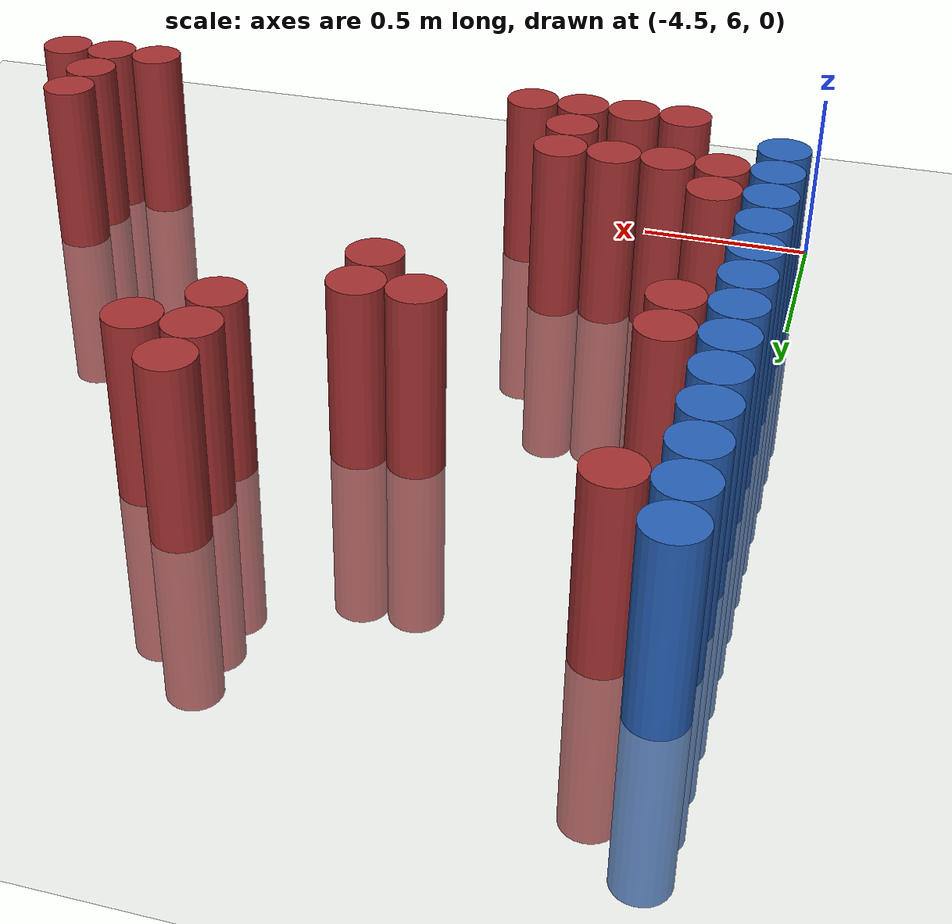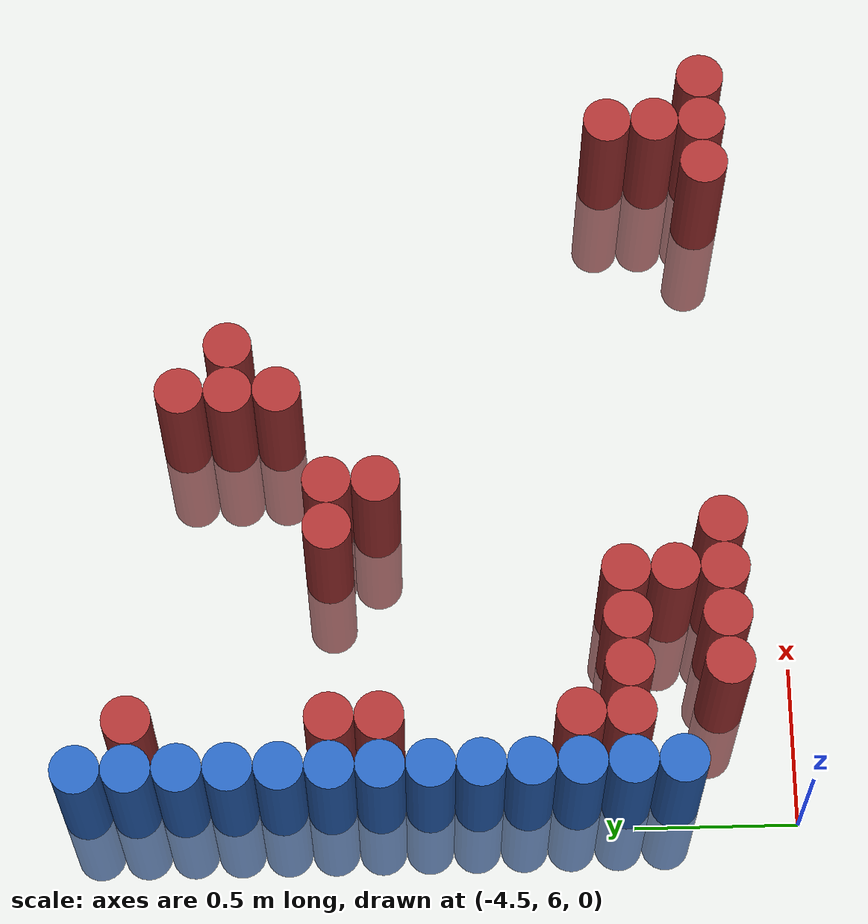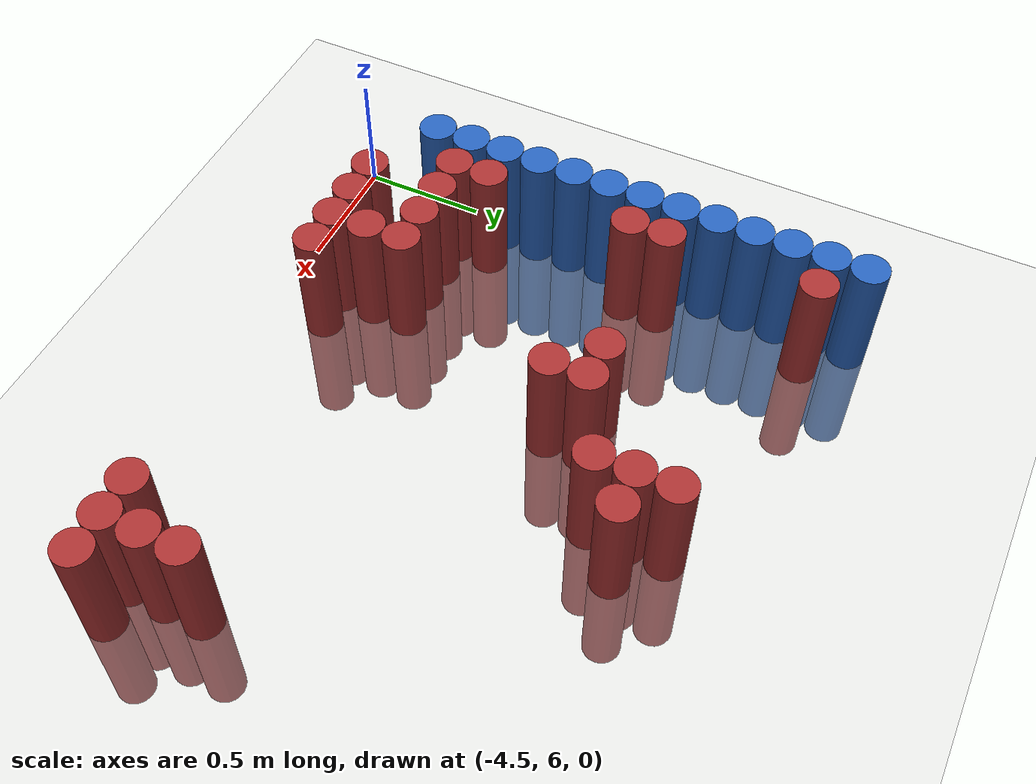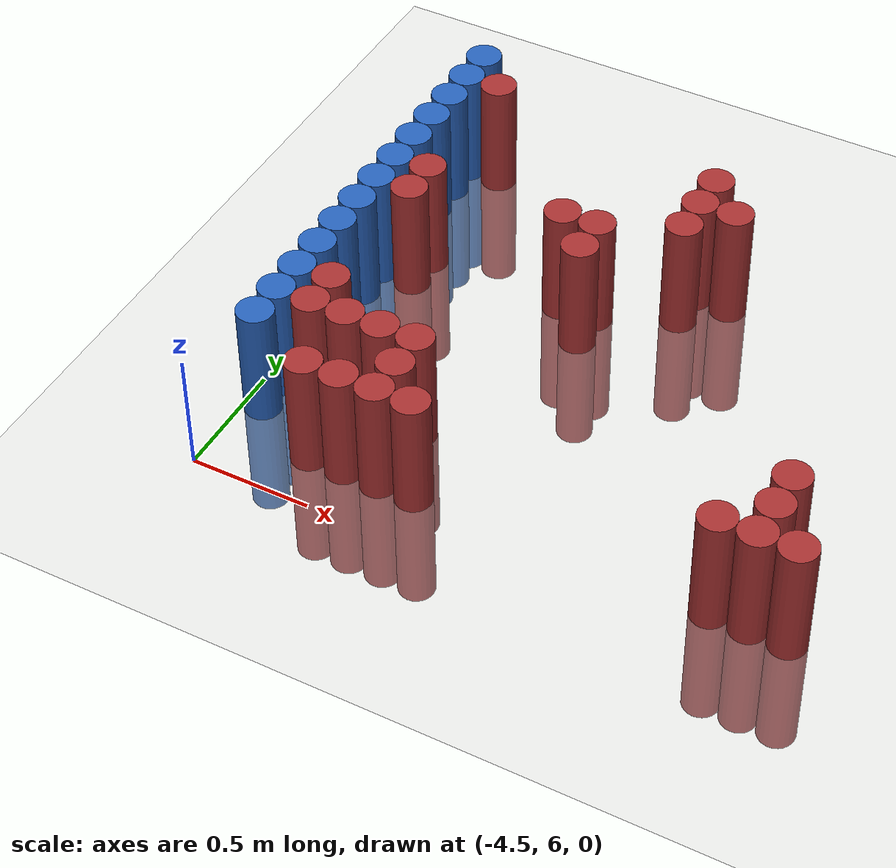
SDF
<sdf version="1.6">
 <world name="default">
  <model name="ground_plane">
   <static>1</static>
   <link name="link">
    <collision name="collision">
     <geometry><plane><normal>0 0 1</normal><size>100 100</size></plane></geometry>
     <surface><friction><ode><mu>100</mu><mu2>50</mu2></ode></friction></surface>
    </collision>
    <visual name="visual">
     <cast_shadows>0</cast_shadows>
     <geometry><plane><normal>0 0 1</normal><size>100 100</size></plane></geometry>
     <material>
      <script><uri>file://media/materials/scripts/gazebo.material</uri><name>Gazebo/Grey</name></script>
     </material>
    </visual>
   </link>
  </model>
  <model name="unit_cylinder_104">
   <static>1</static>
   <pose>-4.425000 6.375000 0.000000 0.000000 0.000000 0.000000</pose>
   <link name="link">
    <inertial>
     <mass>1</mass>
     <inertia><ixx>0.145833</ixx><ixy>0</ixy><ixz>0</ixz><iyy>0.145833</iyy><iyz>0</iyz><izz>0.125</izz></inertia>
    </inertial>
    <collision name="collision">
     <geometry><cylinder><radius>0.075000</radius><length>1</length></cylinder></geometry>
    </collision>
    <visual name="visual">
     <geometry><cylinder><radius>0.075000</radius><length>1</length></cylinder></geometry>
     <material>
      <ambient>0.152000 0.379000 0.720000 1</ambient>
      <diffuse>0.152000 0.379000 0.720000 1</diffuse>
     </material>
     <material>
      <script><name>Gazebo/Grey</name><uri>file://media/materials/scripts/gazebo.material</uri></script>
     </material>
    </visual>
    <sensor name="sensor_contact" type="contact"><contact><collision>collision</collision></contact></sensor>
   </link>
   <plugin filename="gz-sim-touchplugin-system" name="gz::sim::systems::TouchPlugin">
    <target>robot</target>
    <namespace>robot</namespace>
    <time>0.001</time>
    <enabled>true</enabled>
   </plugin>
  </model>
  <model name="unit_cylinder_105">
   <static>1</static>
   <pose>-4.425000 6.525000 0.000000 0.000000 0.000000 0.000000</pose>
   <link name="link">
    <inertial>
     <mass>1</mass>
     <inertia><ixx>0.145833</ixx><ixy>0</ixy><ixz>0</ixz><iyy>0.145833</iyy><iyz>0</iyz><izz>0.125</izz></inertia>
    </inertial>
    <collision name="collision">
     <geometry><cylinder><radius>0.075000</radius><length>1</length></cylinder></geometry>
    </collision>
    <visual name="visual">
     <geometry><cylinder><radius>0.075000</radius><length>1</length></cylinder></geometry>
     <material>
      <ambient>0.152000 0.379000 0.720000 1</ambient>
      <diffuse>0.152000 0.379000 0.720000 1</diffuse>
     </material>
     <material>
      <script><name>Gazebo/Grey</name><uri>file://media/materials/scripts/gazebo.material</uri></script>
     </material>
    </visual>
    <sensor name="sensor_contact" type="contact"><contact><collision>collision</collision></contact></sensor>
   </link>
   <plugin filename="gz-sim-touchplugin-system" name="gz::sim::systems::TouchPlugin">
    <target>robot</target>
    <namespace>robot</namespace>
    <time>0.001</time>
    <enabled>true</enabled>
   </plugin>
  </model>
  <model name="unit_cylinder_106">
   <static>1</static>
   <pose>-4.425000 6.675000 0.000000 0.000000 0.000000 0.000000</pose>
   <link name="link">
    <inertial>
     <mass>1</mass>
     <inertia><ixx>0.145833</ixx><ixy>0</ixy><ixz>0</ixz><iyy>0.145833</iyy><iyz>0</iyz><izz>0.125</izz></inertia>
    </inertial>
    <collision name="collision">
     <geometry><cylinder><radius>0.075000</radius><length>1</length></cylinder></geometry>
    </collision>
    <visual name="visual">
     <geometry><cylinder><radius>0.075000</radius><length>1</length></cylinder></geometry>
     <material>
      <ambient>0.152000 0.379000 0.720000 1</ambient>
      <diffuse>0.152000 0.379000 0.720000 1</diffuse>
     </material>
     <material>
      <script><name>Gazebo/Grey</name><uri>file://media/materials/scripts/gazebo.material</uri></script>
     </material>
    </visual>
    <sensor name="sensor_contact" type="contact"><contact><collision>collision</collision></contact></sensor>
   </link>
   <plugin filename="gz-sim-touchplugin-system" name="gz::sim::systems::TouchPlugin">
    <target>robot</target>
    <namespace>robot</namespace>
    <time>0.001</time>
    <enabled>true</enabled>
   </plugin>
  </model>
  <model name="unit_cylinder_107">
   <static>1</static>
   <pose>-4.425000 6.825000 0.000000 0.000000 0.000000 0.000000</pose>
   <link name="link">
    <inertial>
     <mass>1</mass>
     <inertia><ixx>0.145833</ixx><ixy>0</ixy><ixz>0</ixz><iyy>0.145833</iyy><iyz>0</iyz><izz>0.125</izz></inertia>
    </inertial>
    <collision name="collision">
     <geometry><cylinder><radius>0.075000</radius><length>1</length></cylinder></geometry>
    </collision>
    <visual name="visual">
     <geometry><cylinder><radius>0.075000</radius><length>1</length></cylinder></geometry>
     <material>
      <ambient>0.152000 0.379000 0.720000 1</ambient>
      <diffuse>0.152000 0.379000 0.720000 1</diffuse>
     </material>
     <material>
      <script><name>Gazebo/Grey</name><uri>file://media/materials/scripts/gazebo.material</uri></script>
     </material>
    </visual>
    <sensor name="sensor_contact" type="contact"><contact><collision>collision</collision></contact></sensor>
   </link>
   <plugin filename="gz-sim-touchplugin-system" name="gz::sim::systems::TouchPlugin">
    <target>robot</target>
    <namespace>robot</namespace>
    <time>0.001</time>
    <enabled>true</enabled>
   </plugin>
  </model>
  <model name="unit_cylinder_108">
   <static>1</static>
   <pose>-4.425000 6.975000 0.000000 0.000000 0.000000 0.000000</pose>
   <link name="link">
    <inertial>
     <mass>1</mass>
     <inertia><ixx>0.145833</ixx><ixy>0</ixy><ixz>0</ixz><iyy>0.145833</iyy><iyz>0</iyz><izz>0.125</izz></inertia>
    </inertial>
    <collision name="collision">
     <geometry><cylinder><radius>0.075000</radius><length>1</length></cylinder></geometry>
    </collision>
    <visual name="visual">
     <geometry><cylinder><radius>0.075000</radius><length>1</length></cylinder></geometry>
     <material>
      <ambient>0.152000 0.379000 0.720000 1</ambient>
      <diffuse>0.152000 0.379000 0.720000 1</diffuse>
     </material>
     <material>
      <script><name>Gazebo/Grey</name><uri>file://media/materials/scripts/gazebo.material</uri></script>
     </material>
    </visual>
    <sensor name="sensor_contact" type="contact"><contact><collision>collision</collision></contact></sensor>
   </link>
   <plugin filename="gz-sim-touchplugin-system" name="gz::sim::systems::TouchPlugin">
    <target>robot</target>
    <namespace>robot</namespace>
    <time>0.001</time>
    <enabled>true</enabled>
   </plugin>
  </model>
  <model name="unit_cylinder_109">
   <static>1</static>
   <pose>-4.425000 7.125000 0.000000 0.000000 0.000000 0.000000</pose>
   <link name="link">
    <inertial>
     <mass>1</mass>
     <inertia><ixx>0.145833</ixx><ixy>0</ixy><ixz>0</ixz><iyy>0.145833</iyy><iyz>0</iyz><izz>0.125</izz></inertia>
    </inertial>
    <collision name="collision">
     <geometry><cylinder><radius>0.075000</radius><length>1</length></cylinder></geometry>
    </collision>
    <visual name="visual">
     <geometry><cylinder><radius>0.075000</radius><length>1</length></cylinder></geometry>
     <material>
      <ambient>0.152000 0.379000 0.720000 1</ambient>
      <diffuse>0.152000 0.379000 0.720000 1</diffuse>
     </material>
     <material>
      <script><name>Gazebo/Grey</name><uri>file://media/materials/scripts/gazebo.material</uri></script>
     </material>
    </visual>
    <sensor name="sensor_contact" type="contact"><contact><collision>collision</collision></contact></sensor>
   </link>
   <plugin filename="gz-sim-touchplugin-system" name="gz::sim::systems::TouchPlugin">
    <target>robot</target>
    <namespace>robot</namespace>
    <time>0.001</time>
    <enabled>true</enabled>
   </plugin>
  </model>
  <model name="unit_cylinder_110">
   <static>1</static>
   <pose>-4.425000 7.275000 0.000000 0.000000 0.000000 0.000000</pose>
   <link name="link">
    <inertial>
     <mass>1</mass>
     <inertia><ixx>0.145833</ixx><ixy>0</ixy><ixz>0</ixz><iyy>0.145833</iyy><iyz>0</iyz><izz>0.125</izz></inertia>
    </inertial>
    <collision name="collision">
     <geometry><cylinder><radius>0.075000</radius><length>1</length></cylinder></geometry>
    </collision>
    <visual name="visual">
     <geometry><cylinder><radius>0.075000</radius><length>1</length></cylinder></geometry>
     <material>
      <ambient>0.152000 0.379000 0.720000 1</ambient>
      <diffuse>0.152000 0.379000 0.720000 1</diffuse>
     </material>
     <material>
      <script><name>Gazebo/Grey</name><uri>file://media/materials/scripts/gazebo.material</uri></script>
     </material>
    </visual>
    <sensor name="sensor_contact" type="contact"><contact><collision>collision</collision></contact></sensor>
   </link>
   <plugin filename="gz-sim-touchplugin-system" name="gz::sim::systems::TouchPlugin">
    <target>robot</target>
    <namespace>robot</namespace>
    <time>0.001</time>
    <enabled>true</enabled>
   </plugin>
  </model>
  <model name="unit_cylinder_111">
   <static>1</static>
   <pose>-4.425000 7.425000 0.000000 0.000000 0.000000 0.000000</pose>
   <link name="link">
    <inertial>
     <mass>1</mass>
     <inertia><ixx>0.145833</ixx><ixy>0</ixy><ixz>0</ixz><iyy>0.145833</iyy><iyz>0</iyz><izz>0.125</izz></inertia>
    </inertial>
    <collision name="collision">
     <geometry><cylinder><radius>0.075000</radius><length>1</length></cylinder></geometry>
    </collision>
    <visual name="visual">
     <geometry><cylinder><radius>0.075000</radius><length>1</length></cylinder></geometry>
     <material>
      <ambient>0.152000 0.379000 0.720000 1</ambient>
      <diffuse>0.152000 0.379000 0.720000 1</diffuse>
     </material>
     <material>
      <script><name>Gazebo/Grey</name><uri>file://media/materials/scripts/gazebo.material</uri></script>
     </material>
    </visual>
    <sensor name="sensor_contact" type="contact"><contact><collision>collision</collision></contact></sensor>
   </link>
   <plugin filename="gz-sim-touchplugin-system" name="gz::sim::systems::TouchPlugin">
    <target>robot</target>
    <namespace>robot</namespace>
    <time>0.001</time>
    <enabled>true</enabled>
   </plugin>
  </model>
  <model name="unit_cylinder_112">
   <static>1</static>
   <pose>-4.425000 7.575000 0.000000 0.000000 0.000000 0.000000</pose>
   <link name="link">
    <inertial>
     <mass>1</mass>
     <inertia><ixx>0.145833</ixx><ixy>0</ixy><ixz>0</ixz><iyy>0.145833</iyy><iyz>0</iyz><izz>0.125</izz></inertia>
    </inertial>
    <collision name="collision">
     <geometry><cylinder><radius>0.075000</radius><length>1</length></cylinder></geometry>
    </collision>
    <visual name="visual">
     <geometry><cylinder><radius>0.075000</radius><length>1</length></cylinder></geometry>
     <material>
      <ambient>0.152000 0.379000 0.720000 1</ambient>
      <diffuse>0.152000 0.379000 0.720000 1</diffuse>
     </material>
     <material>
      <script><name>Gazebo/Grey</name><uri>file://media/materials/scripts/gazebo.material</uri></script>
     </material>
    </visual>
    <sensor name="sensor_contact" type="contact"><contact><collision>collision</collision></contact></sensor>
   </link>
   <plugin filename="gz-sim-touchplugin-system" name="gz::sim::systems::TouchPlugin">
    <target>robot</target>
    <namespace>robot</namespace>
    <time>0.001</time>
    <enabled>true</enabled>
   </plugin>
  </model>
  <model name="unit_cylinder_113">
   <static>1</static>
   <pose>-4.425000 7.725000 0.000000 0.000000 0.000000 0.000000</pose>
   <link name="link">
    <inertial>
     <mass>1</mass>
     <inertia><ixx>0.145833</ixx><ixy>0</ixy><ixz>0</ixz><iyy>0.145833</iyy><iyz>0</iyz><izz>0.125</izz></inertia>
    </inertial>
    <collision name="collision">
     <geometry><cylinder><radius>0.075000</radius><length>1</length></cylinder></geometry>
    </collision>
    <visual name="visual">
     <geometry><cylinder><radius>0.075000</radius><length>1</length></cylinder></geometry>
     <material>
      <ambient>0.152000 0.379000 0.720000 1</ambient>
      <diffuse>0.152000 0.379000 0.720000 1</diffuse>
     </material>
     <material>
      <script><name>Gazebo/Grey</name><uri>file://media/materials/scripts/gazebo.material</uri></script>
     </material>
    </visual>
    <sensor name="sensor_contact" type="contact"><contact><collision>collision</collision></contact></sensor>
   </link>
   <plugin filename="gz-sim-touchplugin-system" name="gz::sim::systems::TouchPlugin">
    <target>robot</target>
    <namespace>robot</namespace>
    <time>0.001</time>
    <enabled>true</enabled>
   </plugin>
  </model>
  <model name="unit_cylinder_114">
   <static>1</static>
   <pose>-4.425000 7.875000 0.000000 0.000000 0.000000 0.000000</pose>
   <link name="link">
    <inertial>
     <mass>1</mass>
     <inertia><ixx>0.145833</ixx><ixy>0</ixy><ixz>0</ixz><iyy>0.145833</iyy><iyz>0</iyz><izz>0.125</izz></inertia>
    </inertial>
    <collision name="collision">
     <geometry><cylinder><radius>0.075000</radius><length>1</length></cylinder></geometry>
    </collision>
    <visual name="visual">
     <geometry><cylinder><radius>0.075000</radius><length>1</length></cylinder></geometry>
     <material>
      <ambient>0.152000 0.379000 0.720000 1</ambient>
      <diffuse>0.152000 0.379000 0.720000 1</diffuse>
     </material>
     <material>
      <script><name>Gazebo/Grey</name><uri>file://media/materials/scripts/gazebo.material</uri></script>
     </material>
    </visual>
    <sensor name="sensor_contact" type="contact"><contact><collision>collision</collision></contact></sensor>
   </link>
   <plugin filename="gz-sim-touchplugin-system" name="gz::sim::systems::TouchPlugin">
    <target>robot</target>
    <namespace>robot</namespace>
    <time>0.001</time>
    <enabled>true</enabled>
   </plugin>
  </model>
  <model name="unit_cylinder_115">
   <static>1</static>
   <pose>-4.425000 8.025000 0.000000 0.000000 0.000000 0.000000</pose>
   <link name="link">
    <inertial>
     <mass>1</mass>
     <inertia><ixx>0.145833</ixx><ixy>0</ixy><ixz>0</ixz><iyy>0.145833</iyy><iyz>0</iyz><izz>0.125</izz></inertia>
    </inertial>
    <collision name="collision">
     <geometry><cylinder><radius>0.075000</radius><length>1</length></cylinder></geometry>
    </collision>
    <visual name="visual">
     <geometry><cylinder><radius>0.075000</radius><length>1</length></cylinder></geometry>
     <material>
      <ambient>0.152000 0.379000 0.720000 1</ambient>
      <diffuse>0.152000 0.379000 0.720000 1</diffuse>
     </material>
     <material>
      <script><name>Gazebo/Grey</name><uri>file://media/materials/scripts/gazebo.material</uri></script>
     </material>
    </visual>
    <sensor name="sensor_contact" type="contact"><contact><collision>collision</collision></contact></sensor>
   </link>
   <plugin filename="gz-sim-touchplugin-system" name="gz::sim::systems::TouchPlugin">
    <target>robot</target>
    <namespace>robot</namespace>
    <time>0.001</time>
    <enabled>true</enabled>
   </plugin>
  </model>
  <model name="unit_cylinder_116">
   <static>1</static>
   <pose>-4.425000 8.175000 0.000000 0.000000 0.000000 0.000000</pose>
   <link name="link">
    <inertial>
     <mass>1</mass>
     <inertia><ixx>0.145833</ixx><ixy>0</ixy><ixz>0</ixz><iyy>0.145833</iyy><iyz>0</iyz><izz>0.125</izz></inertia>
    </inertial>
    <collision name="collision">
     <geometry><cylinder><radius>0.075000</radius><length>1</length></cylinder></geometry>
    </collision>
    <visual name="visual">
     <geometry><cylinder><radius>0.075000</radius><length>1</length></cylinder></geometry>
     <material>
      <ambient>0.152000 0.379000 0.720000 1</ambient>
      <diffuse>0.152000 0.379000 0.720000 1</diffuse>
     </material>
     <material>
      <script><name>Gazebo/Grey</name><uri>file://media/materials/scripts/gazebo.material</uri></script>
     </material>
    </visual>
    <sensor name="sensor_contact" type="contact"><contact><collision>collision</collision></contact></sensor>
   </link>
   <plugin filename="gz-sim-touchplugin-system" name="gz::sim::systems::TouchPlugin">
    <target>robot</target>
    <namespace>robot</namespace>
    <time>0.001</time>
    <enabled>true</enabled>
   </plugin>
  </model>
  <model name="unit_cylinder_131">
   <static>1</static>
   <pose>-4.275000 6.525000 0.000000 0.000000 0.000000 0.000000</pose>
   <link name="link">
    <inertial>
     <mass>1</mass>
     <inertia><ixx>0.145833</ixx><ixy>0</ixy><ixz>0</ixz><iyy>0.145833</iyy><iyz>0</iyz><izz>0.125</izz></inertia>
    </inertial>
    <collision name="collision">
     <geometry><cylinder><radius>0.075000</radius><length>1</length></cylinder></geometry>
    </collision>
    <visual name="visual">
     <geometry><cylinder><radius>0.075000</radius><length>1</length></cylinder></geometry>
     <material>
      <ambient>0.648000 0.192000 0.192000 1</ambient>
      <diffuse>0.648000 0.192000 0.192000 1</diffuse>
     </material>
     <material>
      <script><name>Gazebo/Grey</name><uri>file://media/materials/scripts/gazebo.material</uri></script>
     </material>
    </visual>
    <sensor name="sensor_contact" type="contact"><contact><collision>collision</collision></contact></sensor>
   </link>
   <plugin filename="gz-sim-touchplugin-system" name="gz::sim::systems::TouchPlugin">
    <target>robot</target>
    <namespace>robot</namespace>
    <time>0.001</time>
    <enabled>true</enabled>
   </plugin>
  </model>
  <model name="unit_cylinder_132">
   <static>1</static>
   <pose>-4.275000 6.675000 0.000000 0.000000 0.000000 0.000000</pose>
   <link name="link">
    <inertial>
     <mass>1</mass>
     <inertia><ixx>0.145833</ixx><ixy>0</ixy><ixz>0</ixz><iyy>0.145833</iyy><iyz>0</iyz><izz>0.125</izz></inertia>
    </inertial>
    <collision name="collision">
     <geometry><cylinder><radius>0.075000</radius><length>1</length></cylinder></geometry>
    </collision>
    <visual name="visual">
     <geometry><cylinder><radius>0.075000</radius><length>1</length></cylinder></geometry>
     <material>
      <ambient>0.648000 0.192000 0.192000 1</ambient>
      <diffuse>0.648000 0.192000 0.192000 1</diffuse>
     </material>
     <material>
      <script><name>Gazebo/Grey</name><uri>file://media/materials/scripts/gazebo.material</uri></script>
     </material>
    </visual>
    <sensor name="sensor_contact" type="contact"><contact><collision>collision</collision></contact></sensor>
   </link>
   <plugin filename="gz-sim-touchplugin-system" name="gz::sim::systems::TouchPlugin">
    <target>robot</target>
    <namespace>robot</namespace>
    <time>0.001</time>
    <enabled>true</enabled>
   </plugin>
  </model>
  <model name="unit_cylinder_133">
   <static>1</static>
   <pose>-4.275000 7.275000 0.000000 0.000000 0.000000 0.000000</pose>
   <link name="link">
    <inertial>
     <mass>1</mass>
     <inertia><ixx>0.145833</ixx><ixy>0</ixy><ixz>0</ixz><iyy>0.145833</iyy><iyz>0</iyz><izz>0.125</izz></inertia>
    </inertial>
    <collision name="collision">
     <geometry><cylinder><radius>0.075000</radius><length>1</length></cylinder></geometry>
    </collision>
    <visual name="visual">
     <geometry><cylinder><radius>0.075000</radius><length>1</length></cylinder></geometry>
     <material>
      <ambient>0.648000 0.192000 0.192000 1</ambient>
      <diffuse>0.648000 0.192000 0.192000 1</diffuse>
     </material>
     <material>
      <script><name>Gazebo/Grey</name><uri>file://media/materials/scripts/gazebo.material</uri></script>
     </material>
    </visual>
    <sensor name="sensor_contact" type="contact"><contact><collision>collision</collision></contact></sensor>
   </link>
   <plugin filename="gz-sim-touchplugin-system" name="gz::sim::systems::TouchPlugin">
    <target>robot</target>
    <namespace>robot</namespace>
    <time>0.001</time>
    <enabled>true</enabled>
   </plugin>
  </model>
  <model name="unit_cylinder_134">
   <static>1</static>
   <pose>-4.275000 7.425000 0.000000 0.000000 0.000000 0.000000</pose>
   <link name="link">
    <inertial>
     <mass>1</mass>
     <inertia><ixx>0.145833</ixx><ixy>0</ixy><ixz>0</ixz><iyy>0.145833</iyy><iyz>0</iyz><izz>0.125</izz></inertia>
    </inertial>
    <collision name="collision">
     <geometry><cylinder><radius>0.075000</radius><length>1</length></cylinder></geometry>
    </collision>
    <visual name="visual">
     <geometry><cylinder><radius>0.075000</radius><length>1</length></cylinder></geometry>
     <material>
      <ambient>0.648000 0.192000 0.192000 1</ambient>
      <diffuse>0.648000 0.192000 0.192000 1</diffuse>
     </material>
     <material>
      <script><name>Gazebo/Grey</name><uri>file://media/materials/scripts/gazebo.material</uri></script>
     </material>
    </visual>
    <sensor name="sensor_contact" type="contact"><contact><collision>collision</collision></contact></sensor>
   </link>
   <plugin filename="gz-sim-touchplugin-system" name="gz::sim::systems::TouchPlugin">
    <target>robot</target>
    <namespace>robot</namespace>
    <time>0.001</time>
    <enabled>true</enabled>
   </plugin>
  </model>
  <model name="unit_cylinder_135">
   <static>1</static>
   <pose>-4.275000 8.025000 0.000000 0.000000 0.000000 0.000000</pose>
   <link name="link">
    <inertial>
     <mass>1</mass>
     <inertia><ixx>0.145833</ixx><ixy>0</ixy><ixz>0</ixz><iyy>0.145833</iyy><iyz>0</iyz><izz>0.125</izz></inertia>
    </inertial>
    <collision name="collision">
     <geometry><cylinder><radius>0.075000</radius><length>1</length></cylinder></geometry>
    </collision>
    <visual name="visual">
     <geometry><cylinder><radius>0.075000</radius><length>1</length></cylinder></geometry>
     <material>
      <ambient>0.648000 0.192000 0.192000 1</ambient>
      <diffuse>0.648000 0.192000 0.192000 1</diffuse>
     </material>
     <material>
      <script><name>Gazebo/Grey</name><uri>file://media/materials/scripts/gazebo.material</uri></script>
     </material>
    </visual>
    <sensor name="sensor_contact" type="contact"><contact><collision>collision</collision></contact></sensor>
   </link>
   <plugin filename="gz-sim-touchplugin-system" name="gz::sim::systems::TouchPlugin">
    <target>robot</target>
    <namespace>robot</namespace>
    <time>0.001</time>
    <enabled>true</enabled>
   </plugin>
  </model>
  <model name="unit_cylinder_142">
   <static>1</static>
   <pose>-4.125000 6.225000 0.000000 0.000000 0.000000 0.000000</pose>
   <link name="link">
    <inertial>
     <mass>1</mass>
     <inertia><ixx>0.145833</ixx><ixy>0</ixy><ixz>0</ixz><iyy>0.145833</iyy><iyz>0</iyz><izz>0.125</izz></inertia>
    </inertial>
    <collision name="collision">
     <geometry><cylinder><radius>0.075000</radius><length>1</length></cylinder></geometry>
    </collision>
    <visual name="visual">
     <geometry><cylinder><radius>0.075000</radius><length>1</length></cylinder></geometry>
     <material>
      <ambient>0.648000 0.192000 0.192000 1</ambient>
      <diffuse>0.648000 0.192000 0.192000 1</diffuse>
     </material>
     <material>
      <script><name>Gazebo/Grey</name><uri>file://media/materials/scripts/gazebo.material</uri></script>
     </material>
    </visual>
    <sensor name="sensor_contact" type="contact"><contact><collision>collision</collision></contact></sensor>
   </link>
   <plugin filename="gz-sim-touchplugin-system" name="gz::sim::systems::TouchPlugin">
    <target>robot</target>
    <namespace>robot</namespace>
    <time>0.001</time>
    <enabled>true</enabled>
   </plugin>
  </model>
  <model name="unit_cylinder_143">
   <static>1</static>
   <pose>-4.125000 6.525000 0.000000 0.000000 0.000000 0.000000</pose>
   <link name="link">
    <inertial>
     <mass>1</mass>
     <inertia><ixx>0.145833</ixx><ixy>0</ixy><ixz>0</ixz><iyy>0.145833</iyy><iyz>0</iyz><izz>0.125</izz></inertia>
    </inertial>
    <collision name="collision">
     <geometry><cylinder><radius>0.075000</radius><length>1</length></cylinder></geometry>
    </collision>
    <visual name="visual">
     <geometry><cylinder><radius>0.075000</radius><length>1</length></cylinder></geometry>
     <material>
      <ambient>0.648000 0.192000 0.192000 1</ambient>
      <diffuse>0.648000 0.192000 0.192000 1</diffuse>
     </material>
     <material>
      <script><name>Gazebo/Grey</name><uri>file://media/materials/scripts/gazebo.material</uri></script>
     </material>
    </visual>
    <sensor name="sensor_contact" type="contact"><contact><collision>collision</collision></contact></sensor>
   </link>
   <plugin filename="gz-sim-touchplugin-system" name="gz::sim::systems::TouchPlugin">
    <target>robot</target>
    <namespace>robot</namespace>
    <time>0.001</time>
    <enabled>true</enabled>
   </plugin>
  </model>
  <model name="unit_cylinder_148">
   <static>1</static>
   <pose>-3.975000 6.225000 0.000000 0.000000 0.000000 0.000000</pose>
   <link name="link">
    <inertial>
     <mass>1</mass>
     <inertia><ixx>0.145833</ixx><ixy>0</ixy><ixz>0</ixz><iyy>0.145833</iyy><iyz>0</iyz><izz>0.125</izz></inertia>
    </inertial>
    <collision name="collision">
     <geometry><cylinder><radius>0.075000</radius><length>1</length></cylinder></geometry>
    </collision>
    <visual name="visual">
     <geometry><cylinder><radius>0.075000</radius><length>1</length></cylinder></geometry>
     <material>
      <ambient>0.648000 0.192000 0.192000 1</ambient>
      <diffuse>0.648000 0.192000 0.192000 1</diffuse>
     </material>
     <material>
      <script><name>Gazebo/Grey</name><uri>file://media/materials/scripts/gazebo.material</uri></script>
     </material>
    </visual>
    <sensor name="sensor_contact" type="contact"><contact><collision>collision</collision></contact></sensor>
   </link>
   <plugin filename="gz-sim-touchplugin-system" name="gz::sim::systems::TouchPlugin">
    <target>robot</target>
    <namespace>robot</namespace>
    <time>0.001</time>
    <enabled>true</enabled>
   </plugin>
  </model>
  <model name="unit_cylinder_149">
   <static>1</static>
   <pose>-3.975000 6.525000 0.000000 0.000000 0.000000 0.000000</pose>
   <link name="link">
    <inertial>
     <mass>1</mass>
     <inertia><ixx>0.145833</ixx><ixy>0</ixy><ixz>0</ixz><iyy>0.145833</iyy><iyz>0</iyz><izz>0.125</izz></inertia>
    </inertial>
    <collision name="collision">
     <geometry><cylinder><radius>0.075000</radius><length>1</length></cylinder></geometry>
    </collision>
    <visual name="visual">
     <geometry><cylinder><radius>0.075000</radius><length>1</length></cylinder></geometry>
     <material>
      <ambient>0.648000 0.192000 0.192000 1</ambient>
      <diffuse>0.648000 0.192000 0.192000 1</diffuse>
     </material>
     <material>
      <script><name>Gazebo/Grey</name><uri>file://media/materials/scripts/gazebo.material</uri></script>
     </material>
    </visual>
    <sensor name="sensor_contact" type="contact"><contact><collision>collision</collision></contact></sensor>
   </link>
   <plugin filename="gz-sim-touchplugin-system" name="gz::sim::systems::TouchPlugin">
    <target>robot</target>
    <namespace>robot</namespace>
    <time>0.001</time>
    <enabled>true</enabled>
   </plugin>
  </model>
  <model name="unit_cylinder_155">
   <static>1</static>
   <pose>-3.825000 6.225000 0.000000 0.000000 0.000000 0.000000</pose>
   <link name="link">
    <inertial>
     <mass>1</mass>
     <inertia><ixx>0.145833</ixx><ixy>0</ixy><ixz>0</ixz><iyy>0.145833</iyy><iyz>0</iyz><izz>0.125</izz></inertia>
    </inertial>
    <collision name="collision">
     <geometry><cylinder><radius>0.075000</radius><length>1</length></cylinder></geometry>
    </collision>
    <visual name="visual">
     <geometry><cylinder><radius>0.075000</radius><length>1</length></cylinder></geometry>
     <material>
      <ambient>0.648000 0.192000 0.192000 1</ambient>
      <diffuse>0.648000 0.192000 0.192000 1</diffuse>
     </material>
     <material>
      <script><name>Gazebo/Grey</name><uri>file://media/materials/scripts/gazebo.material</uri></script>
     </material>
    </visual>
    <sensor name="sensor_contact" type="contact"><contact><collision>collision</collision></contact></sensor>
   </link>
   <plugin filename="gz-sim-touchplugin-system" name="gz::sim::systems::TouchPlugin">
    <target>robot</target>
    <namespace>robot</namespace>
    <time>0.001</time>
    <enabled>true</enabled>
   </plugin>
  </model>
  <model name="unit_cylinder_156">
   <static>1</static>
   <pose>-3.825000 6.375000 0.000000 0.000000 0.000000 0.000000</pose>
   <link name="link">
    <inertial>
     <mass>1</mass>
     <inertia><ixx>0.145833</ixx><ixy>0</ixy><ixz>0</ixz><iyy>0.145833</iyy><iyz>0</iyz><izz>0.125</izz></inertia>
    </inertial>
    <collision name="collision">
     <geometry><cylinder><radius>0.075000</radius><length>1</length></cylinder></geometry>
    </collision>
    <visual name="visual">
     <geometry><cylinder><radius>0.075000</radius><length>1</length></cylinder></geometry>
     <material>
      <ambient>0.648000 0.192000 0.192000 1</ambient>
      <diffuse>0.648000 0.192000 0.192000 1</diffuse>
     </material>
     <material>
      <script><name>Gazebo/Grey</name><uri>file://media/materials/scripts/gazebo.material</uri></script>
     </material>
    </visual>
    <sensor name="sensor_contact" type="contact"><contact><collision>collision</collision></contact></sensor>
   </link>
   <plugin filename="gz-sim-touchplugin-system" name="gz::sim::systems::TouchPlugin">
    <target>robot</target>
    <namespace>robot</namespace>
    <time>0.001</time>
    <enabled>true</enabled>
   </plugin>
  </model>
  <model name="unit_cylinder_157">
   <static>1</static>
   <pose>-3.825000 6.525000 0.000000 0.000000 0.000000 0.000000</pose>
   <link name="link">
    <inertial>
     <mass>1</mass>
     <inertia><ixx>0.145833</ixx><ixy>0</ixy><ixz>0</ixz><iyy>0.145833</iyy><iyz>0</iyz><izz>0.125</izz></inertia>
    </inertial>
    <collision name="collision">
     <geometry><cylinder><radius>0.075000</radius><length>1</length></cylinder></geometry>
    </collision>
    <visual name="visual">
     <geometry><cylinder><radius>0.075000</radius><length>1</length></cylinder></geometry>
     <material>
      <ambient>0.648000 0.192000 0.192000 1</ambient>
      <diffuse>0.648000 0.192000 0.192000 1</diffuse>
     </material>
     <material>
      <script><name>Gazebo/Grey</name><uri>file://media/materials/scripts/gazebo.material</uri></script>
     </material>
    </visual>
    <sensor name="sensor_contact" type="contact"><contact><collision>collision</collision></contact></sensor>
   </link>
   <plugin filename="gz-sim-touchplugin-system" name="gz::sim::systems::TouchPlugin">
    <target>robot</target>
    <namespace>robot</namespace>
    <time>0.001</time>
    <enabled>true</enabled>
   </plugin>
  </model>
  <model name="unit_cylinder_160">
   <static>1</static>
   <pose>-3.675000 6.225000 0.000000 0.000000 0.000000 0.000000</pose>
   <link name="link">
    <inertial>
     <mass>1</mass>
     <inertia><ixx>0.145833</ixx><ixy>0</ixy><ixz>0</ixz><iyy>0.145833</iyy><iyz>0</iyz><izz>0.125</izz></inertia>
    </inertial>
    <collision name="collision">
     <geometry><cylinder><radius>0.075000</radius><length>1</length></cylinder></geometry>
    </collision>
    <visual name="visual">
     <geometry><cylinder><radius>0.075000</radius><length>1</length></cylinder></geometry>
     <material>
      <ambient>0.648000 0.192000 0.192000 1</ambient>
      <diffuse>0.648000 0.192000 0.192000 1</diffuse>
     </material>
     <material>
      <script><name>Gazebo/Grey</name><uri>file://media/materials/scripts/gazebo.material</uri></script>
     </material>
    </visual>
    <sensor name="sensor_contact" type="contact"><contact><collision>collision</collision></contact></sensor>
   </link>
   <plugin filename="gz-sim-touchplugin-system" name="gz::sim::systems::TouchPlugin">
    <target>robot</target>
    <namespace>robot</namespace>
    <time>0.001</time>
    <enabled>true</enabled>
   </plugin>
  </model>
  <model name="unit_cylinder_161">
   <static>1</static>
   <pose>-3.675000 7.425000 0.000000 0.000000 0.000000 0.000000</pose>
   <link name="link">
    <inertial>
     <mass>1</mass>
     <inertia><ixx>0.145833</ixx><ixy>0</ixy><ixz>0</ixz><iyy>0.145833</iyy><iyz>0</iyz><izz>0.125</izz></inertia>
    </inertial>
    <collision name="collision">
     <geometry><cylinder><radius>0.075000</radius><length>1</length></cylinder></geometry>
    </collision>
    <visual name="visual">
     <geometry><cylinder><radius>0.075000</radius><length>1</length></cylinder></geometry>
     <material>
      <ambient>0.648000 0.192000 0.192000 1</ambient>
      <diffuse>0.648000 0.192000 0.192000 1</diffuse>
     </material>
     <material>
      <script><name>Gazebo/Grey</name><uri>file://media/materials/scripts/gazebo.material</uri></script>
     </material>
    </visual>
    <sensor name="sensor_contact" type="contact"><contact><collision>collision</collision></contact></sensor>
   </link>
   <plugin filename="gz-sim-touchplugin-system" name="gz::sim::systems::TouchPlugin">
    <target>robot</target>
    <namespace>robot</namespace>
    <time>0.001</time>
    <enabled>true</enabled>
   </plugin>
  </model>
  <model name="unit_cylinder_168">
   <static>1</static>
   <pose>-3.525000 7.275000 0.000000 0.000000 0.000000 0.000000</pose>
   <link name="link">
    <inertial>
     <mass>1</mass>
     <inertia><ixx>0.145833</ixx><ixy>0</ixy><ixz>0</ixz><iyy>0.145833</iyy><iyz>0</iyz><izz>0.125</izz></inertia>
    </inertial>
    <collision name="collision">
     <geometry><cylinder><radius>0.075000</radius><length>1</length></cylinder></geometry>
    </collision>
    <visual name="visual">
     <geometry><cylinder><radius>0.075000</radius><length>1</length></cylinder></geometry>
     <material>
      <ambient>0.648000 0.192000 0.192000 1</ambient>
      <diffuse>0.648000 0.192000 0.192000 1</diffuse>
     </material>
     <material>
      <script><name>Gazebo/Grey</name><uri>file://media/materials/scripts/gazebo.material</uri></script>
     </material>
    </visual>
    <sensor name="sensor_contact" type="contact"><contact><collision>collision</collision></contact></sensor>
   </link>
   <plugin filename="gz-sim-touchplugin-system" name="gz::sim::systems::TouchPlugin">
    <target>robot</target>
    <namespace>robot</namespace>
    <time>0.001</time>
    <enabled>true</enabled>
   </plugin>
  </model>
  <model name="unit_cylinder_169">
   <static>1</static>
   <pose>-3.525000 7.425000 0.000000 0.000000 0.000000 0.000000</pose>
   <link name="link">
    <inertial>
     <mass>1</mass>
     <inertia><ixx>0.145833</ixx><ixy>0</ixy><ixz>0</ixz><iyy>0.145833</iyy><iyz>0</iyz><izz>0.125</izz></inertia>
    </inertial>
    <collision name="collision">
     <geometry><cylinder><radius>0.075000</radius><length>1</length></cylinder></geometry>
    </collision>
    <visual name="visual">
     <geometry><cylinder><radius>0.075000</radius><length>1</length></cylinder></geometry>
     <material>
      <ambient>0.648000 0.192000 0.192000 1</ambient>
      <diffuse>0.648000 0.192000 0.192000 1</diffuse>
     </material>
     <material>
      <script><name>Gazebo/Grey</name><uri>file://media/materials/scripts/gazebo.material</uri></script>
     </material>
    </visual>
    <sensor name="sensor_contact" type="contact"><contact><collision>collision</collision></contact></sensor>
   </link>
   <plugin filename="gz-sim-touchplugin-system" name="gz::sim::systems::TouchPlugin">
    <target>robot</target>
    <namespace>robot</namespace>
    <time>0.001</time>
    <enabled>true</enabled>
   </plugin>
  </model>
  <model name="unit_cylinder_185">
   <static>1</static>
   <pose>-3.225000 7.575000 0.000000 0.000000 0.000000 0.000000</pose>
   <link name="link">
    <inertial>
     <mass>1</mass>
     <inertia><ixx>0.145833</ixx><ixy>0</ixy><ixz>0</ixz><iyy>0.145833</iyy><iyz>0</iyz><izz>0.125</izz></inertia>
    </inertial>
    <collision name="collision">
     <geometry><cylinder><radius>0.075000</radius><length>1</length></cylinder></geometry>
    </collision>
    <visual name="visual">
     <geometry><cylinder><radius>0.075000</radius><length>1</length></cylinder></geometry>
     <material>
      <ambient>0.648000 0.192000 0.192000 1</ambient>
      <diffuse>0.648000 0.192000 0.192000 1</diffuse>
     </material>
     <material>
      <script><name>Gazebo/Grey</name><uri>file://media/materials/scripts/gazebo.material</uri></script>
     </material>
    </visual>
    <sensor name="sensor_contact" type="contact"><contact><collision>collision</collision></contact></sensor>
   </link>
   <plugin filename="gz-sim-touchplugin-system" name="gz::sim::systems::TouchPlugin">
    <target>robot</target>
    <namespace>robot</namespace>
    <time>0.001</time>
    <enabled>true</enabled>
   </plugin>
  </model>
  <model name="unit_cylinder_186">
   <static>1</static>
   <pose>-3.225000 7.725000 0.000000 0.000000 0.000000 0.000000</pose>
   <link name="link">
    <inertial>
     <mass>1</mass>
     <inertia><ixx>0.145833</ixx><ixy>0</ixy><ixz>0</ixz><iyy>0.145833</iyy><iyz>0</iyz><izz>0.125</izz></inertia>
    </inertial>
    <collision name="collision">
     <geometry><cylinder><radius>0.075000</radius><length>1</length></cylinder></geometry>
    </collision>
    <visual name="visual">
     <geometry><cylinder><radius>0.075000</radius><length>1</length></cylinder></geometry>
     <material>
      <ambient>0.648000 0.192000 0.192000 1</ambient>
      <diffuse>0.648000 0.192000 0.192000 1</diffuse>
     </material>
     <material>
      <script><name>Gazebo/Grey</name><uri>file://media/materials/scripts/gazebo.material</uri></script>
     </material>
    </visual>
    <sensor name="sensor_contact" type="contact"><contact><collision>collision</collision></contact></sensor>
   </link>
   <plugin filename="gz-sim-touchplugin-system" name="gz::sim::systems::TouchPlugin">
    <target>robot</target>
    <namespace>robot</namespace>
    <time>0.001</time>
    <enabled>true</enabled>
   </plugin>
  </model>
  <model name="unit_cylinder_187">
   <static>1</static>
   <pose>-3.225000 7.875000 0.000000 0.000000 0.000000 0.000000</pose>
   <link name="link">
    <inertial>
     <mass>1</mass>
     <inertia><ixx>0.145833</ixx><ixy>0</ixy><ixz>0</ixz><iyy>0.145833</iyy><iyz>0</iyz><izz>0.125</izz></inertia>
    </inertial>
    <collision name="collision">
     <geometry><cylinder><radius>0.075000</radius><length>1</length></cylinder></geometry>
    </collision>
    <visual name="visual">
     <geometry><cylinder><radius>0.075000</radius><length>1</length></cylinder></geometry>
     <material>
      <ambient>0.648000 0.192000 0.192000 1</ambient>
      <diffuse>0.648000 0.192000 0.192000 1</diffuse>
     </material>
     <material>
      <script><name>Gazebo/Grey</name><uri>file://media/materials/scripts/gazebo.material</uri></script>
     </material>
    </visual>
    <sensor name="sensor_contact" type="contact"><contact><collision>collision</collision></contact></sensor>
   </link>
   <plugin filename="gz-sim-touchplugin-system" name="gz::sim::systems::TouchPlugin">
    <target>robot</target>
    <namespace>robot</namespace>
    <time>0.001</time>
    <enabled>true</enabled>
   </plugin>
  </model>
  <model name="unit_cylinder_191">
   <static>1</static>
   <pose>-3.075000 7.725000 0.000000 0.000000 0.000000 0.000000</pose>
   <link name="link">
    <inertial>
     <mass>1</mass>
     <inertia><ixx>0.145833</ixx><ixy>0</ixy><ixz>0</ixz><iyy>0.145833</iyy><iyz>0</iyz><izz>0.125</izz></inertia>
    </inertial>
    <collision name="collision">
     <geometry><cylinder><radius>0.075000</radius><length>1</length></cylinder></geometry>
    </collision>
    <visual name="visual">
     <geometry><cylinder><radius>0.075000</radius><length>1</length></cylinder></geometry>
     <material>
      <ambient>0.648000 0.192000 0.192000 1</ambient>
      <diffuse>0.648000 0.192000 0.192000 1</diffuse>
     </material>
     <material>
      <script><name>Gazebo/Grey</name><uri>file://media/materials/scripts/gazebo.material</uri></script>
     </material>
    </visual>
    <sensor name="sensor_contact" type="contact"><contact><collision>collision</collision></contact></sensor>
   </link>
   <plugin filename="gz-sim-touchplugin-system" name="gz::sim::systems::TouchPlugin">
    <target>robot</target>
    <namespace>robot</namespace>
    <time>0.001</time>
    <enabled>true</enabled>
   </plugin>
  </model>
  <model name="unit_cylinder_206">
   <static>1</static>
   <pose>-2.475000 6.225000 0.000000 0.000000 0.000000 0.000000</pose>
   <link name="link">
    <inertial>
     <mass>1</mass>
     <inertia><ixx>0.145833</ixx><ixy>0</ixy><ixz>0</ixz><iyy>0.145833</iyy><iyz>0</iyz><izz>0.125</izz></inertia>
    </inertial>
    <collision name="collision">
     <geometry><cylinder><radius>0.075000</radius><length>1</length></cylinder></geometry>
    </collision>
    <visual name="visual">
     <geometry><cylinder><radius>0.075000</radius><length>1</length></cylinder></geometry>
     <material>
      <ambient>0.648000 0.192000 0.192000 1</ambient>
      <diffuse>0.648000 0.192000 0.192000 1</diffuse>
     </material>
     <material>
      <script><name>Gazebo/Grey</name><uri>file://media/materials/scripts/gazebo.material</uri></script>
     </material>
    </visual>
    <sensor name="sensor_contact" type="contact"><contact><collision>collision</collision></contact></sensor>
   </link>
   <plugin filename="gz-sim-touchplugin-system" name="gz::sim::systems::TouchPlugin">
    <target>robot</target>
    <namespace>robot</namespace>
    <time>0.001</time>
    <enabled>true</enabled>
   </plugin>
  </model>
  <model name="unit_cylinder_208">
   <static>1</static>
   <pose>-2.325000 6.225000 0.000000 0.000000 0.000000 0.000000</pose>
   <link name="link">
    <inertial>
     <mass>1</mass>
     <inertia><ixx>0.145833</ixx><ixy>0</ixy><ixz>0</ixz><iyy>0.145833</iyy><iyz>0</iyz><izz>0.125</izz></inertia>
    </inertial>
    <collision name="collision">
     <geometry><cylinder><radius>0.075000</radius><length>1</length></cylinder></geometry>
    </collision>
    <visual name="visual">
     <geometry><cylinder><radius>0.075000</radius><length>1</length></cylinder></geometry>
     <material>
      <ambient>0.648000 0.192000 0.192000 1</ambient>
      <diffuse>0.648000 0.192000 0.192000 1</diffuse>
     </material>
     <material>
      <script><name>Gazebo/Grey</name><uri>file://media/materials/scripts/gazebo.material</uri></script>
     </material>
    </visual>
    <sensor name="sensor_contact" type="contact"><contact><collision>collision</collision></contact></sensor>
   </link>
   <plugin filename="gz-sim-touchplugin-system" name="gz::sim::systems::TouchPlugin">
    <target>robot</target>
    <namespace>robot</namespace>
    <time>0.001</time>
    <enabled>true</enabled>
   </plugin>
  </model>
  <model name="unit_cylinder_209">
   <static>1</static>
   <pose>-2.325000 6.375000 0.000000 0.000000 0.000000 0.000000</pose>
   <link name="link">
    <inertial>
     <mass>1</mass>
     <inertia><ixx>0.145833</ixx><ixy>0</ixy><ixz>0</ixz><iyy>0.145833</iyy><iyz>0</iyz><izz>0.125</izz></inertia>
    </inertial>
    <collision name="collision">
     <geometry><cylinder><radius>0.075000</radius><length>1</length></cylinder></geometry>
    </collision>
    <visual name="visual">
     <geometry><cylinder><radius>0.075000</radius><length>1</length></cylinder></geometry>
     <material>
      <ambient>0.648000 0.192000 0.192000 1</ambient>
      <diffuse>0.648000 0.192000 0.192000 1</diffuse>
     </material>
     <material>
      <script><name>Gazebo/Grey</name><uri>file://media/materials/scripts/gazebo.material</uri></script>
     </material>
    </visual>
    <sensor name="sensor_contact" type="contact"><contact><collision>collision</collision></contact></sensor>
   </link>
   <plugin filename="gz-sim-touchplugin-system" name="gz::sim::systems::TouchPlugin">
    <target>robot</target>
    <namespace>robot</namespace>
    <time>0.001</time>
    <enabled>true</enabled>
   </plugin>
  </model>
  <model name="unit_cylinder_210">
   <static>1</static>
   <pose>-2.325000 6.525000 0.000000 0.000000 0.000000 0.000000</pose>
   <link name="link">
    <inertial>
     <mass>1</mass>
     <inertia><ixx>0.145833</ixx><ixy>0</ixy><ixz>0</ixz><iyy>0.145833</iyy><iyz>0</iyz><izz>0.125</izz></inertia>
    </inertial>
    <collision name="collision">
     <geometry><cylinder><radius>0.075000</radius><length>1</length></cylinder></geometry>
    </collision>
    <visual name="visual">
     <geometry><cylinder><radius>0.075000</radius><length>1</length></cylinder></geometry>
     <material>
      <ambient>0.648000 0.192000 0.192000 1</ambient>
      <diffuse>0.648000 0.192000 0.192000 1</diffuse>
     </material>
     <material>
      <script><name>Gazebo/Grey</name><uri>file://media/materials/scripts/gazebo.material</uri></script>
     </material>
    </visual>
    <sensor name="sensor_contact" type="contact"><contact><collision>collision</collision></contact></sensor>
   </link>
   <plugin filename="gz-sim-touchplugin-system" name="gz::sim::systems::TouchPlugin">
    <target>robot</target>
    <namespace>robot</namespace>
    <time>0.001</time>
    <enabled>true</enabled>
   </plugin>
  </model>
  <model name="unit_cylinder_212">
   <static>1</static>
   <pose>-2.175000 6.225000 0.000000 0.000000 0.000000 0.000000</pose>
   <link name="link">
    <inertial>
     <mass>1</mass>
     <inertia><ixx>0.145833</ixx><ixy>0</ixy><ixz>0</ixz><iyy>0.145833</iyy><iyz>0</iyz><izz>0.125</izz></inertia>
    </inertial>
    <collision name="collision">
     <geometry><cylinder><radius>0.075000</radius><length>1</length></cylinder></geometry>
    </collision>
    <visual name="visual">
     <geometry><cylinder><radius>0.075000</radius><length>1</length></cylinder></geometry>
     <material>
      <ambient>0.648000 0.192000 0.192000 1</ambient>
      <diffuse>0.648000 0.192000 0.192000 1</diffuse>
     </material>
     <material>
      <script><name>Gazebo/Grey</name><uri>file://media/materials/scripts/gazebo.material</uri></script>
     </material>
    </visual>
    <sensor name="sensor_contact" type="contact"><contact><collision>collision</collision></contact></sensor>
   </link>
   <plugin filename="gz-sim-touchplugin-system" name="gz::sim::systems::TouchPlugin">
    <target>robot</target>
    <namespace>robot</namespace>
    <time>0.001</time>
    <enabled>true</enabled>
   </plugin>
  </model>
 </world>
</sdf>
